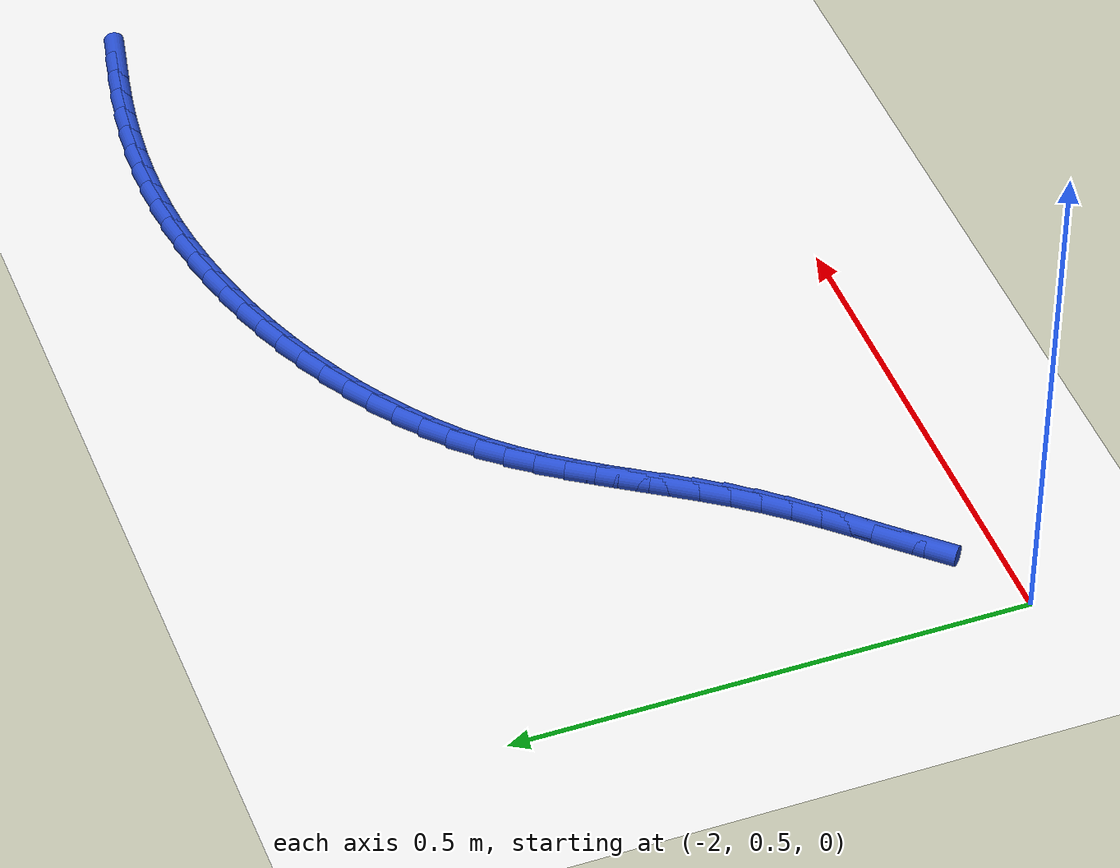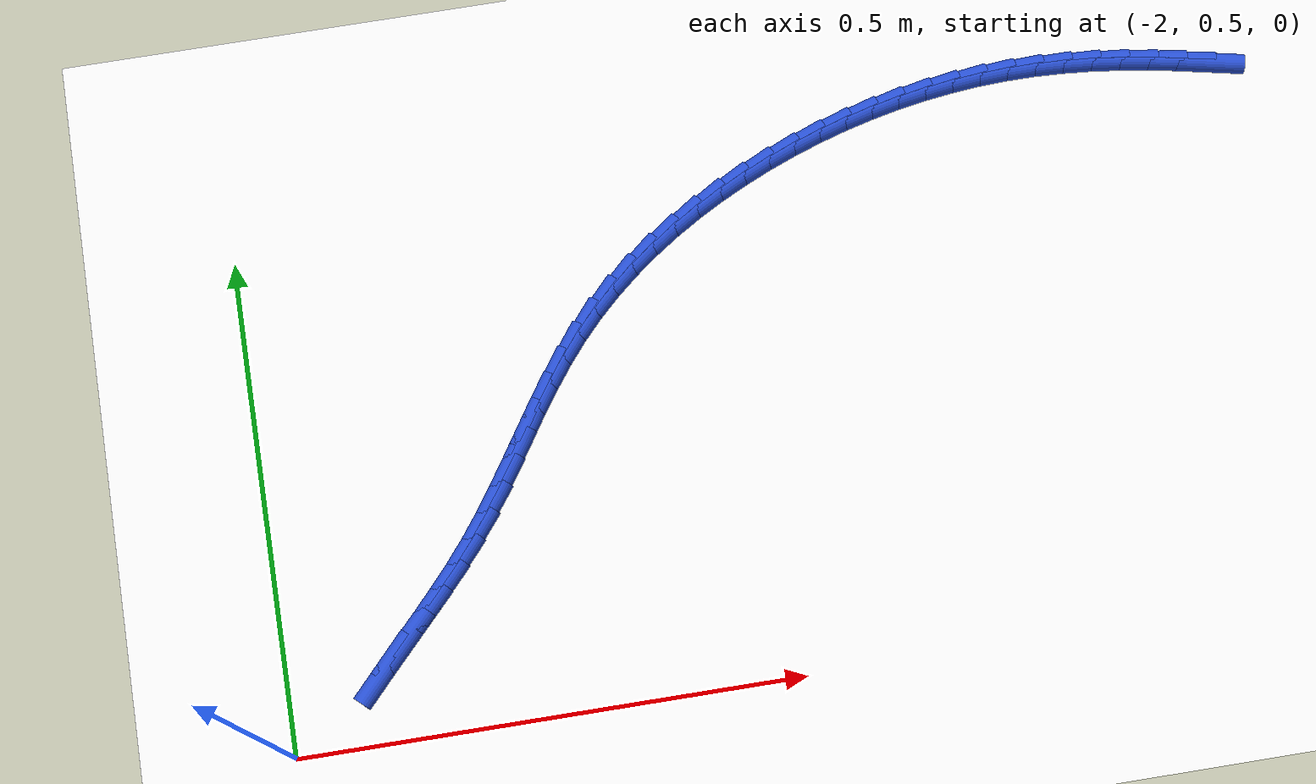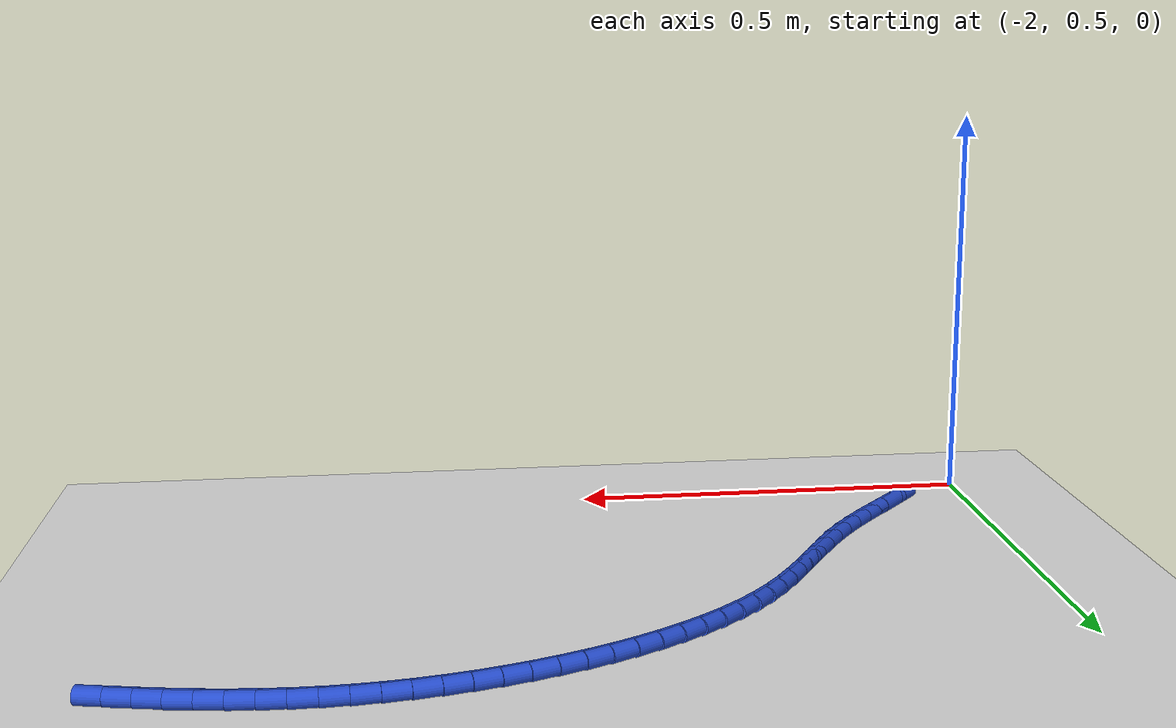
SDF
<sdf version="1.6">
 <world name="default">
  <model name="ground_plane">
   <static>1</static>
   <link name="link">
    <collision name="collision">
     <geometry><plane><normal>0 0 1</normal><size>100 100</size></plane></geometry>
     <surface><friction><ode><mu>100</mu><mu2>50</mu2></ode></friction></surface>
    </collision>
    <visual name="visual">
     <cast_shadows>0</cast_shadows>
     <geometry><plane><normal>0 0 1</normal><size>100 100</size></plane></geometry>
     <material>
      <script><uri>file://media/materials/scripts/gazebo.material</uri><name>Gazebo/WhiteGlow</name></script>
     </material>
    </visual>
   </link>
  </model>
  <model name="line">
   <link name="link_56">
    <pose>-0.9978488742817935 1.0508999210495658 0.01 0 1.57 -0.20927239608331416</pose>
    <collision name="collision">
     <geometry><cylinder><radius>0.01</radius><length>0.08</length></cylinder></geometry>
    </collision>
    <visual name="visual">
     <material>
      <script><name>Gazebo/Blue</name><uri>file://media/materials/scripts/gazebo.material</uri></script>
     </material>
     <geometry><cylinder><radius>0.01</radius><length>0.08</length></cylinder></geometry>
    </visual>
   </link>
   <link name="link_57">
    <pose>-1.0264515964450216 1.0569746216264468 0.01 0 1.57 -0.18388086949557483</pose>
    <collision name="collision">
     <geometry><cylinder><radius>0.01</radius><length>0.08</length></cylinder></geometry>
    </collision>
    <visual name="visual">
     <material>
      <script><name>Gazebo/Blue</name><uri>file://media/materials/scripts/gazebo.material</uri></script>
     </material>
     <geometry><cylinder><radius>0.01</radius><length>0.08</length></cylinder></geometry>
    </visual>
   </link>
   <link name="link_58">
    <pose>-1.0551895872386674 1.0623193637042565 0.01 0 1.57 -0.15470791386955415</pose>
    <collision name="collision">
     <geometry><cylinder><radius>0.01</radius><length>0.08</length></cylinder></geometry>
    </collision>
    <visual name="visual">
     <material>
      <script><name>Gazebo/Blue</name><uri>file://media/materials/scripts/gazebo.material</uri></script>
     </material>
     <geometry><cylinder><radius>0.01</radius><length>0.08</length></cylinder></geometry>
    </visual>
   </link>
   <link name="link_59">
    <pose>-1.084038625484513 1.0668184904755276 0.01 0 1.57 -0.12166155194188981</pose>
    <collision name="collision">
     <geometry><cylinder><radius>0.01</radius><length>0.08</length></cylinder></geometry>
    </collision>
    <visual name="visual">
     <material>
      <script><name>Gazebo/Blue</name><uri>file://media/materials/scripts/gazebo.material</uri></script>
     </material>
     <geometry><cylinder><radius>0.01</radius><length>0.08</length></cylinder></geometry>
    </visual>
   </link>
   <link name="link_60">
    <pose>-1.1129744900043381 1.070356345132792 0.01 0 1.57 -0.08466113518458541</pose>
    <collision name="collision">
     <geometry><cylinder><radius>0.01</radius><length>0.08</length></cylinder></geometry>
    </collision>
    <visual name="visual">
     <material>
      <script><name>Gazebo/Blue</name><uri>file://media/materials/scripts/gazebo.material</uri></script>
     </material>
     <geometry><cylinder><radius>0.01</radius><length>0.08</length></cylinder></geometry>
    </visual>
   </link>
   <link name="link_61">
    <pose>-1.141972959619925 1.0728172708685835 0.01 0 1.57 -0.04365264407227953</pose>
    <collision name="collision">
     <geometry><cylinder><radius>0.01</radius><length>0.08</length></cylinder></geometry>
    </collision>
    <visual name="visual">
     <material>
      <script><name>Gazebo/Blue</name><uri>file://media/materials/scripts/gazebo.material</uri></script>
     </material>
     <geometry><cylinder><radius>0.01</radius><length>0.08</length></cylinder></geometry>
    </visual>
   </link>
   <link name="link_62">
    <pose>-1.171009813053154 1.0740856120294227 0.01 0 1.57 0.0005040791827742568</pose>
    <collision name="collision">
     <geometry><cylinder><radius>0.01</radius><length>0.08</length></cylinder></geometry>
    </collision>
    <visual name="visual">
     <material>
      <script><name>Gazebo/Blue</name><uri>file://media/materials/scripts/gazebo.material</uri></script>
     </material>
     <geometry><cylinder><radius>0.01</radius><length>0.08</length></cylinder></geometry>
    </visual>
   </link>
   <link name="link_63">
    <pose>-1.2000586426086244 1.0740709691179195 0.01 0 1.57 0.04467481798325068</pose>
    <collision name="collision">
     <geometry><cylinder><radius>0.01</radius><length>0.08</length></cylinder></geometry>
    </collision>
    <visual name="visual">
     <material>
      <script><name>Gazebo/Blue</name><uri>file://media/materials/scripts/gazebo.material</uri></script>
     </material>
     <geometry><cylinder><radius>0.01</radius><length>0.08</length></cylinder></geometry>
    </visual>
   </link>
   <link name="link_64">
    <pose>-1.2290852141479631 1.0727733489223477 0.01 0 1.57 0.08815606338495383</pose>
    <collision name="collision">
     <geometry><cylinder><radius>0.01</radius><length>0.08</length></cylinder></geometry>
    </collision>
    <visual name="visual">
     <material>
      <script><name>Gazebo/Blue</name><uri>file://media/materials/scripts/gazebo.material</uri></script>
     </material>
     <geometry><cylinder><radius>0.01</radius><length>0.08</length></cylinder></geometry>
    </visual>
   </link>
   <link name="link_65">
    <pose>-1.2580535430259903 1.0702129790157138 0.01 0 1.57 0.1309522715924106</pose>
    <collision name="collision">
     <geometry><cylinder><radius>0.01</radius><length>0.08</length></cylinder></geometry>
    </collision>
    <visual name="visual">
     <material>
      <script><name>Gazebo/Blue</name><uri>file://media/materials/scripts/gazebo.material</uri></script>
     </material>
     <geometry><cylinder><radius>0.01</radius><length>0.08</length></cylinder></geometry>
    </visual>
   </link>
   <link name="link_66">
    <pose>-1.2869276445975248 1.0664100869710242 0.01 0 1.57 0.17307708043567815</pose>
    <collision name="collision">
     <geometry><cylinder><radius>0.01</radius><length>0.08</length></cylinder></geometry>
    </collision>
    <visual name="visual">
     <material>
      <script><name>Gazebo/Blue</name><uri>file://media/materials/scripts/gazebo.material</uri></script>
     </material>
     <geometry><cylinder><radius>0.01</radius><length>0.08</length></cylinder></geometry>
    </visual>
   </link>
   <link name="link_67">
    <pose>-1.3156715342173853 1.061384900361285 0.01 0 1.57 0.21455219473750126</pose>
    <collision name="collision">
     <geometry><cylinder><radius>0.01</radius><length>0.08</length></cylinder></geometry>
    </collision>
    <visual name="visual">
     <material>
      <script><name>Gazebo/Blue</name><uri>file://media/materials/scripts/gazebo.material</uri></script>
     </material>
     <geometry><cylinder><radius>0.01</radius><length>0.08</length></cylinder></geometry>
    </visual>
   </link>
   <link name="link_68">
    <pose>-1.3442492272403919 1.055157646759502 0.01 0 1.57 0.25540627633548146</pose>
    <collision name="collision">
     <geometry><cylinder><radius>0.01</radius><length>0.08</length></cylinder></geometry>
    </collision>
    <visual name="visual">
     <material>
      <script><name>Gazebo/Blue</name><uri>file://media/materials/scripts/gazebo.material</uri></script>
     </material>
     <geometry><cylinder><radius>0.01</radius><length>0.08</length></cylinder></geometry>
    </visual>
   </link>
   <link name="link_69">
    <pose>-1.372624739021363 1.0477485537386833 0.01 0 1.57 0.2956738708308501</pose>
    <collision name="collision">
     <geometry><cylinder><radius>0.01</radius><length>0.08</length></cylinder></geometry>
    </collision>
    <visual name="visual">
     <material>
      <script><name>Gazebo/Blue</name><uri>file://media/materials/scripts/gazebo.material</uri></script>
     </material>
     <geometry><cylinder><radius>0.01</radius><length>0.08</length></cylinder></geometry>
    </visual>
   </link>
   <link name="link_70">
    <pose>-1.4007620849151186 1.0391778488718337 0.01 0 1.57 0.33539492481070055</pose>
    <collision name="collision">
     <geometry><cylinder><radius>0.01</radius><length>0.08</length></cylinder></geometry>
    </collision>
    <visual name="visual">
     <material>
      <script><name>Gazebo/Blue</name><uri>file://media/materials/scripts/gazebo.material</uri></script>
     </material>
     <geometry><cylinder><radius>0.01</radius><length>0.08</length></cylinder></geometry>
    </visual>
   </link>
   <link name="link_71">
    <pose>-1.428625256033232 1.0294657515851513 0.01 0 1.57 0.37502141786910415</pose>
    <collision name="collision">
     <geometry><cylinder><radius>0.01</radius><length>0.08</length></cylinder></geometry>
    </collision>
    <visual name="visual">
     <material>
      <script><name>Gazebo/Blue</name><uri>file://media/materials/scripts/gazebo.material</uri></script>
     </material>
     <geometry><cylinder><radius>0.01</radius><length>0.08</length></cylinder></geometry>
    </visual>
   </link>
   <link name="link_72">
    <pose>-1.456160428673546 1.0186264947346007 0.01 0 1.57 0.4158344526872102</pose>
    <collision name="collision">
     <geometry><cylinder><radius>0.01</radius><length>0.08</length></cylinder></geometry>
    </collision>
    <visual name="visual">
     <material>
      <script><name>Gazebo/Blue</name><uri>file://media/materials/scripts/gazebo.material</uri></script>
     </material>
     <geometry><cylinder><radius>0.01</radius><length>0.08</length></cylinder></geometry>
    </visual>
   </link>
   <link name="link_73">
    <pose>-1.4832644716996515 1.0066577416838949 0.01 0 1.57 0.45829531437098053</pose>
    <collision name="collision">
     <geometry><cylinder><radius>0.01</radius><length>0.08</length></cylinder></geometry>
    </collision>
    <visual name="visual">
     <material>
      <script><name>Gazebo/Blue</name><uri>file://media/materials/scripts/gazebo.material</uri></script>
     </material>
     <geometry><cylinder><radius>0.01</radius><length>0.08</length></cylinder></geometry>
    </visual>
   </link>
   <link name="link_74">
    <pose>-1.509825794103496 0.9935543129033819 0.01 0 1.57 0.5026780730943393</pose>
    <collision name="collision">
     <geometry><cylinder><radius>0.01</radius><length>0.08</length></cylinder></geometry>
    </collision>
    <visual name="visual">
     <material>
      <script><name>Gazebo/Blue</name><uri>file://media/materials/scripts/gazebo.material</uri></script>
     </material>
     <geometry><cylinder><radius>0.01</radius><length>0.08</length></cylinder></geometry>
    </visual>
   </link>
   <link name="link_75">
    <pose>-1.535732804877027 0.9793110288634105 0.01 0 1.57 0.5492530713230755</pose>
    <collision name="collision">
     <geometry><cylinder><radius>0.01</radius><length>0.08</length></cylinder></geometry>
    </collision>
    <visual name="visual">
     <material>
      <script><name>Gazebo/Blue</name><uri>file://media/materials/scripts/gazebo.material</uri></script>
     </material>
     <geometry><cylinder><radius>0.01</radius><length>0.08</length></cylinder></geometry>
    </visual>
   </link>
   <link name="link_76">
    <pose>-1.5608739130121916 0.9639227100343278 0.01 0 1.57 0.5982826981336563</pose>
    <collision name="collision">
     <geometry><cylinder><radius>0.01</radius><length>0.08</length></cylinder></geometry>
    </collision>
    <visual name="visual">
     <material>
      <script><name>Gazebo/Blue</name><uri>file://media/materials/scripts/gazebo.material</uri></script>
     </material>
     <geometry><cylinder><radius>0.01</radius><length>0.08</length></cylinder></geometry>
    </visual>
   </link>
   <link name="link_77">
    <pose>-1.5851375275009378 0.9473841768864827 0.01 0 1.57 0.6500143504657983</pose>
    <collision name="collision">
     <geometry><cylinder><radius>0.01</radius><length>0.08</length></cylinder></geometry>
    </collision>
    <visual name="visual">
     <material>
      <script><name>Gazebo/Blue</name><uri>file://media/materials/scripts/gazebo.material</uri></script>
     </material>
     <geometry><cylinder><radius>0.01</radius><length>0.08</length></cylinder></geometry>
    </visual>
   </link>
   <link name="link_78">
    <pose>-1.608412057335212 0.9296902498902232 0.01 0 1.57 0.704670092950943</pose>
    <collision name="collision">
     <geometry><cylinder><radius>0.01</radius><length>0.08</length></cylinder></geometry>
    </collision>
    <visual name="visual">
     <material>
      <script><name>Gazebo/Blue</name><uri>file://media/materials/scripts/gazebo.material</uri></script>
     </material>
     <geometry><cylinder><radius>0.01</radius><length>0.08</length></cylinder></geometry>
    </visual>
   </link>
   <link name="link_79">
    <pose>-1.6305859115069625 0.9108357495158972 0.01 0 1.57 0.762432657109184</pose>
    <collision name="collision">
     <geometry><cylinder><radius>0.01</radius><length>0.08</length></cylinder></geometry>
    </collision>
    <visual name="visual">
     <material>
      <script><name>Gazebo/Blue</name><uri>file://media/materials/scripts/gazebo.material</uri></script>
     </material>
     <geometry><cylinder><radius>0.01</radius><length>0.08</length></cylinder></geometry>
    </visual>
   </link>
   <link name="link_80">
    <pose>-1.6515474990081358 0.8908154962338536 0.01 0 1.57 0.8234277417236489</pose>
    <collision name="collision">
     <geometry><cylinder><radius>0.01</radius><length>0.08</length></cylinder></geometry>
    </collision>
    <visual name="visual">
     <material>
      <script><name>Gazebo/Blue</name><uri>file://media/materials/scripts/gazebo.material</uri></script>
     </material>
     <geometry><cylinder><radius>0.01</radius><length>0.08</length></cylinder></geometry>
    </visual>
   </link>
   <link name="link_81">
    <pose>-1.6711852291350184 0.8696243106940796 0.01 0 1.57 0.8846503032734113</pose>
    <collision name="collision">
     <geometry><cylinder><radius>0.01</radius><length>0.08</length></cylinder></geometry>
    </collision>
    <visual name="visual">
     <material>
      <script><name>Gazebo/Blue</name><uri>file://media/materials/scripts/gazebo.material</uri></script>
     </material>
     <geometry><cylinder><radius>0.01</radius><length>0.08</length></cylinder></geometry>
    </visual>
   </link>
   <link name="link_82">
    <pose>-1.6894642236967323 0.8473022942644477 0.01 0 1.57 0.934280456264343</pose>
    <collision name="collision">
     <geometry><cylinder><radius>0.01</radius><length>0.08</length></cylinder></geometry>
    </collision>
    <visual name="visual">
     <material>
      <script><name>Gazebo/Blue</name><uri>file://media/materials/scripts/gazebo.material</uri></script>
     </material>
     <geometry><cylinder><radius>0.01</radius><length>0.08</length></cylinder></geometry>
    </visual>
   </link>
   <link name="link_83">
    <pose>-1.7066420032903236 0.8240621411081279 0.01 0 1.57 0.9693784476259121</pose>
    <collision name="collision">
     <geometry><cylinder><radius>0.01</radius><length>0.08</length></cylinder></geometry>
    </collision>
    <visual name="visual">
     <material>
      <script><name>Gazebo/Blue</name><uri>file://media/materials/scripts/gazebo.material</uri></script>
     </material>
     <geometry><cylinder><radius>0.01</radius><length>0.08</length></cylinder></geometry>
    </visual>
   </link>
   <link name="link_84">
    <pose>-1.7230457440045361 0.8001576605929963 0.01 0 1.57 0.9900353693420798</pose>
    <collision name="collision">
     <geometry><cylinder><radius>0.01</radius><length>0.08</length></cylinder></geometry>
    </collision>
    <visual name="visual">
     <material>
      <script><name>Gazebo/Blue</name><uri>file://media/materials/scripts/gazebo.material</uri></script>
     </material>
     <geometry><cylinder><radius>0.01</radius><length>0.08</length></cylinder></geometry>
    </visual>
   </link>
   <link name="link_85">
    <pose>-1.7390026219281145 0.7758426620869261 0.01 0 1.57 0.9964178431524559</pose>
    <collision name="collision">
     <geometry><cylinder><radius>0.01</radius><length>0.08</length></cylinder></geometry>
    </collision>
    <visual name="visual">
     <material>
      <script><name>Gazebo/Blue</name><uri>file://media/materials/scripts/gazebo.material</uri></script>
     </material>
     <geometry><cylinder><radius>0.01</radius><length>0.08</length></cylinder></geometry>
    </visual>
   </link>
   <link name="link_86">
    <pose>-1.754839813149802 0.7513709549577923 0.01 0 1.57 0.9886405566086245</pose>
    <collision name="collision">
     <geometry><cylinder><radius>0.01</radius><length>0.08</length></cylinder></geometry>
    </collision>
    <visual name="visual">
     <material>
      <script><name>Gazebo/Blue</name><uri>file://media/materials/scripts/gazebo.material</uri></script>
     </material>
     <geometry><cylinder><radius>0.01</radius><length>0.08</length></cylinder></geometry>
    </visual>
   </link>
   <link name="link_87">
    <pose>-1.7708844937583441 0.7269963485734696 0.01 0 1.57 0.9667288768641912</pose>
    <collision name="collision">
     <geometry><cylinder><radius>0.01</radius><length>0.08</length></cylinder></geometry>
    </collision>
    <visual name="visual">
     <material>
      <script><name>Gazebo/Blue</name><uri>file://media/materials/scripts/gazebo.material</uri></script>
     </material>
     <geometry><cylinder><radius>0.01</radius><length>0.08</length></cylinder></geometry>
    </visual>
   </link>
   <link name="link_88">
    <pose>-1.7874638398424838 0.7029726523018316 0.01 0 1.57 0.9306672544153969</pose>
    <collision name="collision">
     <geometry><cylinder><radius>0.01</radius><length>0.08</length></cylinder></geometry>
    </collision>
    <visual name="visual">
     <material>
      <script><name>Gazebo/Blue</name><uri>file://media/materials/scripts/gazebo.material</uri></script>
     </material>
     <geometry><cylinder><radius>0.01</radius><length>0.08</length></cylinder></geometry>
    </visual>
   </link>
   <link name="link_89">
    <pose>-1.804905005040876 0.6795536595761716 0.01 0 1.57 0.8857515519685055</pose>
    <collision name="collision">
     <geometry><cylinder><radius>0.01</radius><length>0.08</length></cylinder></geometry>
    </collision>
    <visual name="visual">
     <material>
      <script><name>Gazebo/Blue</name><uri>file://media/materials/scripts/gazebo.material</uri></script>
     </material>
     <geometry><cylinder><radius>0.01</radius><length>0.08</length></cylinder></geometry>
    </visual>
   </link>
   <link name="link_90">
    <pose>-1.8234102469811198 0.6569045153765144 0.01 0 1.57 0.8495427488782357</pose>
    <collision name="collision">
     <geometry><cylinder><radius>0.01</radius><length>0.08</length></cylinder></geometry>
    </collision>
    <visual name="visual">
     <material>
      <script><name>Gazebo/Blue</name><uri>file://media/materials/scripts/gazebo.material</uri></script>
     </material>
     <geometry><cylinder><radius>0.01</radius><length>0.08</length></cylinder></geometry>
    </visual>
   </link>
   <link name="link_91">
    <pose>-1.8427640046092937 0.6348938061334949 0.01 0 1.57 0.825559434443655</pose>
    <collision name="collision">
     <geometry><cylinder><radius>0.01</radius><length>0.08</length></cylinder></geometry>
    </collision>
    <visual name="visual">
     <material>
      <script><name>Gazebo/Blue</name><uri>file://media/materials/scripts/gazebo.material</uri></script>
     </material>
     <geometry><cylinder><radius>0.01</radius><length>0.08</length></cylinder></geometry>
    </visual>
   </link>
   <link name="link_92">
    <pose>-1.8626634480366118 0.6133281767700576 0.01 0 1.57 0.8136519189810235</pose>
    <collision name="collision">
     <geometry><cylinder><radius>0.01</radius><length>0.08</length></cylinder></geometry>
    </collision>
    <visual name="visual">
     <material>
      <script><name>Gazebo/Blue</name><uri>file://media/materials/scripts/gazebo.material</uri></script>
     </material>
     <geometry><cylinder><radius>0.01</radius><length>0.08</length></cylinder></geometry>
    </visual>
   </link>
   <link name="link_93">
    <pose>-1.8828057473742852 0.5920142722091473 0.01 0 1.57 0.8137715388847231</pose>
    <collision name="collision">
     <geometry><cylinder><radius>0.01</radius><length>0.08</length></cylinder></geometry>
    </collision>
    <visual name="visual">
     <material>
      <script><name>Gazebo/Blue</name><uri>file://media/materials/scripts/gazebo.material</uri></script>
     </material>
     <geometry><cylinder><radius>0.01</radius><length>0.08</length></cylinder></geometry>
    </visual>
   </link>
   <link name="link_94">
    <pose>-1.9028880727335298 0.5707587373737087 0.01 0 1.57 0.8260227718018436</pose>
    <collision name="collision">
     <geometry><cylinder><radius>0.01</radius><length>0.08</length></cylinder></geometry>
    </collision>
    <visual name="visual">
     <material>
      <script><name>Gazebo/Blue</name><uri>file://media/materials/scripts/gazebo.material</uri></script>
     </material>
     <geometry><cylinder><radius>0.01</radius><length>0.08</length></cylinder></geometry>
    </visual>
   </link>
  </model>
 </world>
</sdf>
